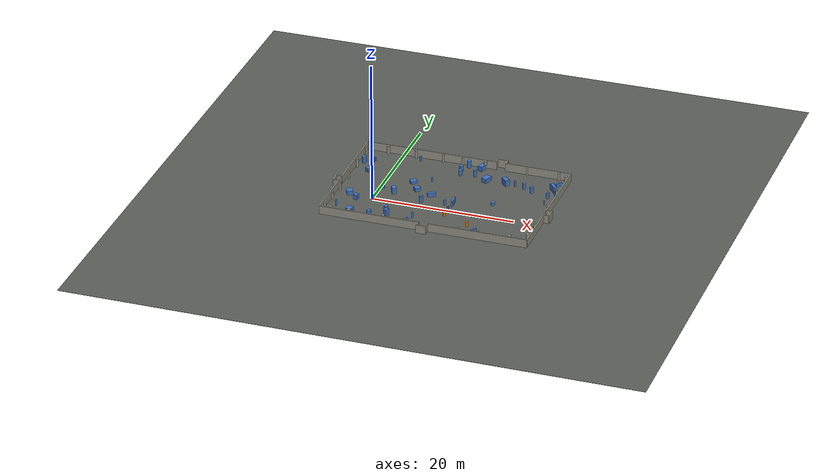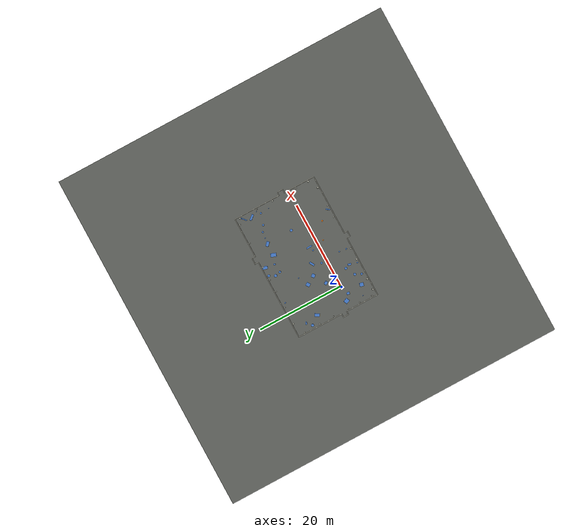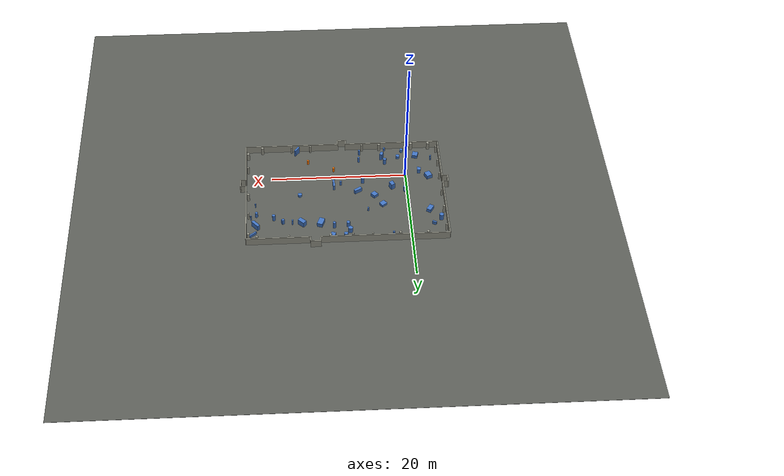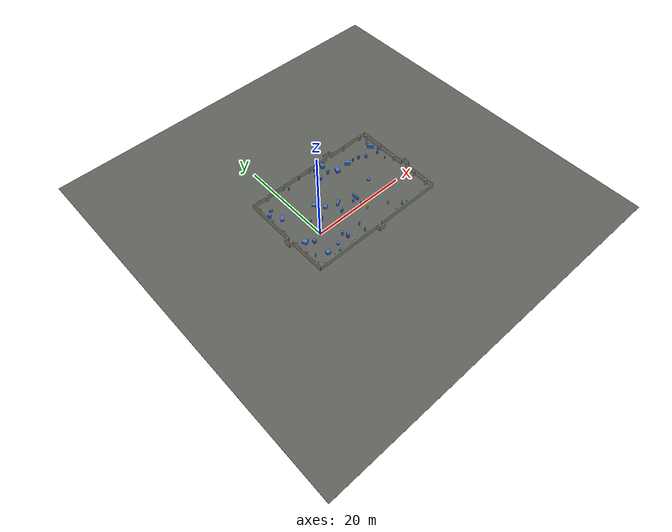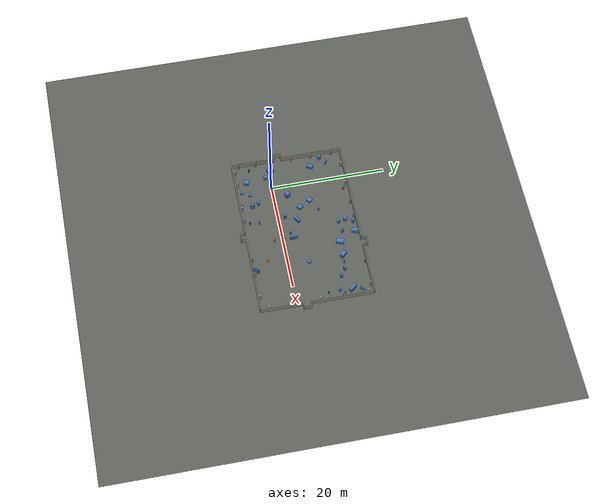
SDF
<sdf version="1.9">
 <world name="default">
  <model name="track_feature">
   <static>true</static>
   <link name="feature_link">
    <collision name="feat_box_3_collision">
     <pose>3.730426 6.058745 0.191413 0.000000 0.000000 -2.520980</pose>
     <geometry><box><size>0.887231 0.761544 0.382827</size></box></geometry>
    </collision>
    <visual name="feat_box_3_visual">
     <pose>3.730426 6.058745 0.191413 0.000000 0.000000 -2.520980</pose>
     <geometry><box><size>0.887231 0.761544 0.382827</size></box></geometry>
     <material><ambient>0.25 0.45 0.75 1</ambient><diffuse>0.25 0.45 0.75 1</diffuse></material>
    </visual>
    <collision name="feat_box_6_collision">
     <pose>-3.415404 0.365912 0.310558 0.000000 0.000000 -1.155151</pose>
     <geometry><box><size>0.975236 0.867513 0.621116</size></box></geometry>
    </collision>
    <visual name="feat_box_6_visual">
     <pose>-3.415404 0.365912 0.310558 0.000000 0.000000 -1.155151</pose>
     <geometry><box><size>0.975236 0.867513 0.621116</size></box></geometry>
     <material><ambient>0.25 0.45 0.75 1</ambient><diffuse>0.25 0.45 0.75 1</diffuse></material>
    </visual>
    <collision name="feat_box_8_collision">
     <pose>16.115030 -5.550907 0.544657 0.000000 0.000000 0.929510</pose>
     <geometry><box><size>1.044340 0.217578 1.089314</size></box></geometry>
    </collision>
    <visual name="feat_box_8_visual">
     <pose>16.115030 -5.550907 0.544657 0.000000 0.000000 0.929510</pose>
     <geometry><box><size>1.044340 0.217578 1.089314</size></box></geometry>
     <material><ambient>0.25 0.45 0.75 1</ambient><diffuse>0.25 0.45 0.75 1</diffuse></material>
    </visual>
    <collision name="feat_box_9_collision">
     <pose>10.815213 1.953281 0.410378 0.000000 0.000000 -1.531074</pose>
     <geometry><box><size>1.318826 0.285740 0.820756</size></box></geometry>
    </collision>
    <visual name="feat_box_9_visual">
     <pose>10.815213 1.953281 0.410378 0.000000 0.000000 -1.531074</pose>
     <geometry><box><size>1.318826 0.285740 0.820756</size></box></geometry>
     <material><ambient>0.25 0.45 0.75 1</ambient><diffuse>0.25 0.45 0.75 1</diffuse></material>
    </visual>
    <collision name="feat_box_11_collision">
     <pose>22.926767 11.597689 0.215051 0.000000 0.000000 -2.441700</pose>
     <geometry><box><size>1.338069 0.207549 0.430103</size></box></geometry>
    </collision>
    <visual name="feat_box_11_visual">
     <pose>22.926767 11.597689 0.215051 0.000000 0.000000 -2.441700</pose>
     <geometry><box><size>1.338069 0.207549 0.430103</size></box></geometry>
     <material><ambient>0.25 0.45 0.75 1</ambient><diffuse>0.25 0.45 0.75 1</diffuse></material>
    </visual>
    <collision name="feat_box_13_collision">
     <pose>18.509252 9.308301 0.395112 0.000000 0.000000 0.445934</pose>
     <geometry><box><size>0.389248 0.353503 0.790225</size></box></geometry>
    </collision>
    <visual name="feat_box_13_visual">
     <pose>18.509252 9.308301 0.395112 0.000000 0.000000 0.445934</pose>
     <geometry><box><size>0.389248 0.353503 0.790225</size></box></geometry>
     <material><ambient>0.25 0.45 0.75 1</ambient><diffuse>0.25 0.45 0.75 1</diffuse></material>
    </visual>
    <collision name="feat_box_15_collision">
     <pose>4.902072 4.159753 0.253299 0.000000 0.000000 -0.870662</pose>
     <geometry><box><size>0.793347 0.770475 0.506598</size></box></geometry>
    </collision>
    <visual name="feat_box_15_visual">
     <pose>4.902072 4.159753 0.253299 0.000000 0.000000 -0.870662</pose>
     <geometry><box><size>0.793347 0.770475 0.506598</size></box></geometry>
     <material><ambient>0.25 0.45 0.75 1</ambient><diffuse>0.25 0.45 0.75 1</diffuse></material>
    </visual>
    <collision name="feat_box_20_collision">
     <pose>-2.096711 -0.724525 0.358845 0.000000 0.000000 3.006564</pose>
     <geometry><box><size>0.513341 0.641203 0.717691</size></box></geometry>
    </collision>
    <visual name="feat_box_20_visual">
     <pose>-2.096711 -0.724525 0.358845 0.000000 0.000000 3.006564</pose>
     <geometry><box><size>0.513341 0.641203 0.717691</size></box></geometry>
     <material><ambient>0.25 0.45 0.75 1</ambient><diffuse>0.25 0.45 0.75 1</diffuse></material>
    </visual>
    <collision name="feat_box_22_collision">
     <pose>2.182198 2.469468 0.470216 0.000000 0.000000 0.487606</pose>
     <geometry><box><size>0.615199 0.767488 0.940432</size></box></geometry>
    </collision>
    <visual name="feat_box_22_visual">
     <pose>2.182198 2.469468 0.470216 0.000000 0.000000 0.487606</pose>
     <geometry><box><size>0.615199 0.767488 0.940432</size></box></geometry>
     <material><ambient>0.25 0.45 0.75 1</ambient><diffuse>0.25 0.45 0.75 1</diffuse></material>
    </visual>
    <collision name="feat_box_24_collision">
     <pose>11.415800 12.579143 0.362358 0.000000 0.000000 1.239207</pose>
     <geometry><box><size>1.082434 0.672076 0.724716</size></box></geometry>
    </collision>
    <visual name="feat_box_24_visual">
     <pose>11.415800 12.579143 0.362358 0.000000 0.000000 1.239207</pose>
     <geometry><box><size>1.082434 0.672076 0.724716</size></box></geometry>
     <material><ambient>0.25 0.45 0.75 1</ambient><diffuse>0.25 0.45 0.75 1</diffuse></material>
    </visual>
    <collision name="feat_box_25_collision">
     <pose>13.019192 9.650428 0.325902 0.000000 0.000000 -1.930415</pose>
     <geometry><box><size>1.259161 0.801006 0.651804</size></box></geometry>
    </collision>
    <visual name="feat_box_25_visual">
     <pose>13.019192 9.650428 0.325902 0.000000 0.000000 -1.930415</pose>
     <geometry><box><size>1.259161 0.801006 0.651804</size></box></geometry>
     <material><ambient>0.25 0.45 0.75 1</ambient><diffuse>0.25 0.45 0.75 1</diffuse></material>
    </visual>
    <collision name="feat_box_28_collision">
     <pose>-3.072524 7.477056 0.277819 0.000000 0.000000 1.008469</pose>
     <geometry><box><size>1.099210 0.669735 0.555639</size></box></geometry>
    </collision>
    <visual name="feat_box_28_visual">
     <pose>-3.072524 7.477056 0.277819 0.000000 0.000000 1.008469</pose>
     <geometry><box><size>1.099210 0.669735 0.555639</size></box></geometry>
     <material><ambient>0.25 0.45 0.75 1</ambient><diffuse>0.25 0.45 0.75 1</diffuse></material>
    </visual>
    <collision name="feat_box_30_collision">
     <pose>7.314954 3.180194 0.312349 0.000000 0.000000 -2.598660</pose>
     <geometry><box><size>1.189577 0.423335 0.624698</size></box></geometry>
    </collision>
    <visual name="feat_box_30_visual">
     <pose>7.314954 3.180194 0.312349 0.000000 0.000000 -2.598660</pose>
     <geometry><box><size>1.189577 0.423335 0.624698</size></box></geometry>
     <material><ambient>0.25 0.45 0.75 1</ambient><diffuse>0.25 0.45 0.75 1</diffuse></material>
    </visual>
    <collision name="feat_box_34_collision">
     <pose>3.326744 -3.963082 0.534567 0.000000 0.000000 1.192291</pose>
     <geometry><box><size>0.684785 0.420083 1.069133</size></box></geometry>
    </collision>
    <visual name="feat_box_34_visual">
     <pose>3.326744 -3.963082 0.534567 0.000000 0.000000 1.192291</pose>
     <geometry><box><size>0.684785 0.420083 1.069133</size></box></geometry>
     <material><ambient>0.25 0.45 0.75 1</ambient><diffuse>0.25 0.45 0.75 1</diffuse></material>
    </visual>
    <collision name="feat_box_36_collision">
     <pose>-1.814496 -4.209445 0.277696 0.000000 0.000000 -1.838344</pose>
     <geometry><box><size>0.879017 0.807953 0.555392</size></box></geometry>
    </collision>
    <visual name="feat_box_36_visual">
     <pose>-1.814496 -4.209445 0.277696 0.000000 0.000000 -1.838344</pose>
     <geometry><box><size>0.879017 0.807953 0.555392</size></box></geometry>
     <material><ambient>0.25 0.45 0.75 1</ambient><diffuse>0.25 0.45 0.75 1</diffuse></material>
    </visual>
    <collision name="feat_box_37_collision">
     <pose>15.753716 9.629445 0.439591 0.000000 0.000000 2.358096</pose>
     <geometry><box><size>1.108895 0.632265 0.879181</size></box></geometry>
    </collision>
    <visual name="feat_box_37_visual">
     <pose>15.753716 9.629445 0.439591 0.000000 0.000000 2.358096</pose>
     <geometry><box><size>1.108895 0.632265 0.879181</size></box></geometry>
     <material><ambient>0.25 0.45 0.75 1</ambient><diffuse>0.25 0.45 0.75 1</diffuse></material>
    </visual>
    <collision name="feat_box_39_collision">
     <pose>22.476227 9.916242 0.434328 0.000000 0.000000 2.262926</pose>
     <geometry><box><size>1.376583 0.438230 0.868655</size></box></geometry>
    </collision>
    <visual name="feat_box_39_visual">
     <pose>22.476227 9.916242 0.434328 0.000000 0.000000 2.262926</pose>
     <geometry><box><size>1.376583 0.438230 0.868655</size></box></geometry>
     <material><ambient>0.25 0.45 0.75 1</ambient><diffuse>0.25 0.45 0.75 1</diffuse></material>
    </visual>
    <collision name="feat_box_41_collision">
     <pose>-3.447451 10.404382 0.255332 0.000000 0.000000 -2.001445</pose>
     <geometry><box><size>0.250688 0.607752 0.510664</size></box></geometry>
    </collision>
    <visual name="feat_box_41_visual">
     <pose>-3.447451 10.404382 0.255332 0.000000 0.000000 -2.001445</pose>
     <geometry><box><size>0.250688 0.607752 0.510664</size></box></geometry>
     <material><ambient>0.25 0.45 0.75 1</ambient><diffuse>0.25 0.45 0.75 1</diffuse></material>
    </visual>
    <collision name="feat_cyl_1_collision">
     <pose>6.823430 -3.371344 0.429166 0.000000 0.000000 0.000000</pose>
     <geometry><cylinder><radius>0.144311</radius><length>0.858331</length></cylinder></geometry>
    </collision>
    <visual name="feat_cyl_1_visual">
     <pose>6.823430 -3.371344 0.429166 0.000000 0.000000 0.000000</pose>
     <geometry><cylinder><radius>0.144311</radius><length>0.858331</length></cylinder></geometry>
     <material><ambient>0.25 0.45 0.75 1</ambient><diffuse>0.25 0.45 0.75 1</diffuse></material>
    </visual>
    <collision name="feat_cyl_2_collision">
     <pose>-4.543023 9.419059 0.480460 0.000000 0.000000 0.000000</pose>
     <geometry><cylinder><radius>0.312111</radius><length>0.960920</length></cylinder></geometry>
    </collision>
    <visual name="feat_cyl_2_visual">
     <pose>-4.543023 9.419059 0.480460 0.000000 0.000000 0.000000</pose>
     <geometry><cylinder><radius>0.312111</radius><length>0.960920</length></cylinder></geometry>
     <material><ambient>0.25 0.45 0.75 1</ambient><diffuse>0.25 0.45 0.75 1</diffuse></material>
    </visual>
    <collision name="feat_cyl_4_collision">
     <pose>10.641458 0.350668 0.256841 0.000000 0.000000 0.000000</pose>
     <geometry><cylinder><radius>0.111815</radius><length>0.513683</length></cylinder></geometry>
    </collision>
    <visual name="feat_cyl_4_visual">
     <pose>10.641458 0.350668 0.256841 0.000000 0.000000 0.000000</pose>
     <geometry><cylinder><radius>0.111815</radius><length>0.513683</length></cylinder></geometry>
     <material><ambient>0.25 0.45 0.75 1</ambient><diffuse>0.25 0.45 0.75 1</diffuse></material>
    </visual>
    <collision name="feat_cyl_5_collision">
     <pose>6.479678 1.219268 0.484534 0.000000 0.000000 0.000000</pose>
     <geometry><cylinder><radius>0.237790</radius><length>0.969069</length></cylinder></geometry>
    </collision>
    <visual name="feat_cyl_5_visual">
     <pose>6.479678 1.219268 0.484534 0.000000 0.000000 0.000000</pose>
     <geometry><cylinder><radius>0.237790</radius><length>0.969069</length></cylinder></geometry>
     <material><ambient>0.25 0.45 0.75 1</ambient><diffuse>0.25 0.45 0.75 1</diffuse></material>
    </visual>
    <collision name="feat_cyl_7_collision">
     <pose>0.861585 -3.973469 0.242152 0.000000 0.000000 0.000000</pose>
     <geometry><cylinder><radius>0.289131</radius><length>0.484304</length></cylinder></geometry>
    </collision>
    <visual name="feat_cyl_7_visual">
     <pose>0.861585 -3.973469 0.242152 0.000000 0.000000 0.000000</pose>
     <geometry><cylinder><radius>0.289131</radius><length>0.484304</length></cylinder></geometry>
     <material><ambient>0.25 0.45 0.75 1</ambient><diffuse>0.25 0.45 0.75 1</diffuse></material>
    </visual>
    <collision name="feat_cyl_10_collision">
     <pose>22.343738 7.720364 0.411125 0.000000 0.000000 0.000000</pose>
     <geometry><cylinder><radius>0.204487</radius><length>0.822250</length></cylinder></geometry>
    </collision>
    <visual name="feat_cyl_10_visual">
     <pose>22.343738 7.720364 0.411125 0.000000 0.000000 0.000000</pose>
     <geometry><cylinder><radius>0.204487</radius><length>0.822250</length></cylinder></geometry>
     <material><ambient>0.25 0.45 0.75 1</ambient><diffuse>0.25 0.45 0.75 1</diffuse></material>
    </visual>
    <collision name="feat_cyl_12_collision">
     <pose>6.650186 -4.968301 0.432508 0.000000 0.000000 0.000000</pose>
     <geometry><cylinder><radius>0.150543</radius><length>0.865017</length></cylinder></geometry>
    </collision>
    <visual name="feat_cyl_12_visual">
     <pose>6.650186 -4.968301 0.432508 0.000000 0.000000 0.000000</pose>
     <geometry><cylinder><radius>0.150543</radius><length>0.865017</length></cylinder></geometry>
     <material><ambient>0.25 0.45 0.75 1</ambient><diffuse>0.25 0.45 0.75 1</diffuse></material>
    </visual>
    <collision name="feat_cyl_14_collision">
     <pose>23.142132 8.390867 0.418767 0.000000 0.000000 0.000000</pose>
     <geometry><cylinder><radius>0.097013</radius><length>0.837533</length></cylinder></geometry>
    </collision>
    <visual name="feat_cyl_14_visual">
     <pose>23.142132 8.390867 0.418767 0.000000 0.000000 0.000000</pose>
     <geometry><cylinder><radius>0.097013</radius><length>0.837533</length></cylinder></geometry>
     <material><ambient>0.25 0.45 0.75 1</ambient><diffuse>0.25 0.45 0.75 1</diffuse></material>
    </visual>
    <collision name="feat_cyl_16_collision">
     <pose>2.917547 -2.856771 0.456504 0.000000 0.000000 0.000000</pose>
     <geometry><cylinder><radius>0.262776</radius><length>0.913007</length></cylinder></geometry>
    </collision>
    <visual name="feat_cyl_16_visual">
     <pose>2.917547 -2.856771 0.456504 0.000000 0.000000 0.000000</pose>
     <geometry><cylinder><radius>0.262776</radius><length>0.913007</length></cylinder></geometry>
     <material><ambient>0.25 0.45 0.75 1</ambient><diffuse>0.25 0.45 0.75 1</diffuse></material>
    </visual>
    <collision name="feat_cyl_17_collision">
     <pose>15.911658 3.669256 0.188206 0.000000 0.000000 0.000000</pose>
     <geometry><cylinder><radius>0.306466</radius><length>0.376413</length></cylinder></geometry>
    </collision>
    <visual name="feat_cyl_17_visual">
     <pose>15.911658 3.669256 0.188206 0.000000 0.000000 0.000000</pose>
     <geometry><cylinder><radius>0.306466</radius><length>0.376413</length></cylinder></geometry>
     <material><ambient>0.25 0.45 0.75 1</ambient><diffuse>0.25 0.45 0.75 1</diffuse></material>
    </visual>
    <collision name="feat_cyl_18_collision">
     <pose>22.476498 5.720379 0.325613 0.000000 0.000000 0.000000</pose>
     <geometry><cylinder><radius>0.098485</radius><length>0.651226</length></cylinder></geometry>
    </collision>
    <visual name="feat_cyl_18_visual">
     <pose>22.476498 5.720379 0.325613 0.000000 0.000000 0.000000</pose>
     <geometry><cylinder><radius>0.098485</radius><length>0.651226</length></cylinder></geometry>
     <material><ambient>0.25 0.45 0.75 1</ambient><diffuse>0.25 0.45 0.75 1</diffuse></material>
    </visual>
    <collision name="feat_cyl_19_collision">
     <pose>2.599666 12.349716 0.358015 0.000000 0.000000 0.000000</pose>
     <geometry><cylinder><radius>0.135179</radius><length>0.716030</length></cylinder></geometry>
    </collision>
    <visual name="feat_cyl_19_visual">
     <pose>2.599666 12.349716 0.358015 0.000000 0.000000 0.000000</pose>
     <geometry><cylinder><radius>0.135179</radius><length>0.716030</length></cylinder></geometry>
     <material><ambient>0.25 0.45 0.75 1</ambient><diffuse>0.25 0.45 0.75 1</diffuse></material>
    </visual>
    <collision name="feat_cyl_21_collision">
     <pose>9.509352 12.678236 0.530789 0.000000 0.000000 0.000000</pose>
     <geometry><cylinder><radius>0.281107</radius><length>1.061578</length></cylinder></geometry>
    </collision>
    <visual name="feat_cyl_21_visual">
     <pose>9.509352 12.678236 0.530789 0.000000 0.000000 0.000000</pose>
     <geometry><cylinder><radius>0.281107</radius><length>1.061578</length></cylinder></geometry>
     <material><ambient>0.25 0.45 0.75 1</ambient><diffuse>0.25 0.45 0.75 1</diffuse></material>
    </visual>
    <collision name="feat_cyl_23_collision">
     <pose>9.770001 1.560531 0.361451 0.000000 0.000000 0.000000</pose>
     <geometry><cylinder><radius>0.167578</radius><length>0.722902</length></cylinder></geometry>
    </collision>
    <visual name="feat_cyl_23_visual">
     <pose>9.770001 1.560531 0.361451 0.000000 0.000000 0.000000</pose>
     <geometry><cylinder><radius>0.167578</radius><length>0.722902</length></cylinder></geometry>
     <material><ambient>0.25 0.45 0.75 1</ambient><diffuse>0.25 0.45 0.75 1</diffuse></material>
    </visual>
    <collision name="feat_cyl_26_collision">
     <pose>8.814293 11.367897 0.418019 0.000000 0.000000 0.000000</pose>
     <geometry><cylinder><radius>0.318881</radius><length>0.836038</length></cylinder></geometry>
    </collision>
    <visual name="feat_cyl_26_visual">
     <pose>8.814293 11.367897 0.418019 0.000000 0.000000 0.000000</pose>
     <geometry><cylinder><radius>0.318881</radius><length>0.836038</length></cylinder></geometry>
     <material><ambient>0.25 0.45 0.75 1</ambient><diffuse>0.25 0.45 0.75 1</diffuse></material>
    </visual>
    <collision name="feat_cyl_27_collision">
     <pose>17.130093 9.508165 0.418193 0.000000 0.000000 0.000000</pose>
     <geometry><cylinder><radius>0.127883</radius><length>0.836386</length></cylinder></geometry>
    </collision>
    <visual name="feat_cyl_27_visual">
     <pose>17.130093 9.508165 0.418193 0.000000 0.000000 0.000000</pose>
     <geometry><cylinder><radius>0.127883</radius><length>0.836386</length></cylinder></geometry>
     <material><ambient>0.25 0.45 0.75 1</ambient><diffuse>0.25 0.45 0.75 1</diffuse></material>
    </visual>
    <collision name="feat_cyl_29_collision">
     <pose>0.200716 -5.356258 0.229293 0.000000 0.000000 0.000000</pose>
     <geometry><cylinder><radius>0.235377</radius><length>0.458585</length></cylinder></geometry>
    </collision>
    <visual name="feat_cyl_29_visual">
     <pose>0.200716 -5.356258 0.229293 0.000000 0.000000 0.000000</pose>
     <geometry><cylinder><radius>0.235377</radius><length>0.458585</length></cylinder></geometry>
     <material><ambient>0.25 0.45 0.75 1</ambient><diffuse>0.25 0.45 0.75 1</diffuse></material>
    </visual>
    <collision name="feat_cyl_31_collision">
     <pose>9.079466 10.171304 0.400524 0.000000 0.000000 0.000000</pose>
     <geometry><cylinder><radius>0.258450</radius><length>0.801048</length></cylinder></geometry>
    </collision>
    <visual name="feat_cyl_31_visual">
     <pose>9.079466 10.171304 0.400524 0.000000 0.000000 0.000000</pose>
     <geometry><cylinder><radius>0.258450</radius><length>0.801048</length></cylinder></geometry>
     <material><ambient>0.25 0.45 0.75 1</ambient><diffuse>0.25 0.45 0.75 1</diffuse></material>
    </visual>
    <collision name="feat_cyl_32_collision">
     <pose>19.836274 8.477344 0.451798 0.000000 0.000000 0.000000</pose>
     <geometry><cylinder><radius>0.231257</radius><length>0.903596</length></cylinder></geometry>
    </collision>
    <visual name="feat_cyl_32_visual">
     <pose>19.836274 8.477344 0.451798 0.000000 0.000000 0.000000</pose>
     <geometry><cylinder><radius>0.231257</radius><length>0.903596</length></cylinder></geometry>
     <material><ambient>0.25 0.45 0.75 1</ambient><diffuse>0.25 0.45 0.75 1</diffuse></material>
    </visual>
    <collision name="feat_cyl_33_collision">
     <pose>6.006801 7.211249 0.306891 0.000000 0.000000 0.000000</pose>
     <geometry><cylinder><radius>0.123452</radius><length>0.613782</length></cylinder></geometry>
    </collision>
    <visual name="feat_cyl_33_visual">
     <pose>6.006801 7.211249 0.306891 0.000000 0.000000 0.000000</pose>
     <geometry><cylinder><radius>0.123452</radius><length>0.613782</length></cylinder></geometry>
     <material><ambient>0.25 0.45 0.75 1</ambient><diffuse>0.25 0.45 0.75 1</diffuse></material>
    </visual>
    <collision name="feat_cyl_35_collision">
     <pose>-4.056913 -3.318548 0.437616 0.000000 0.000000 0.000000</pose>
     <geometry><cylinder><radius>0.105128</radius><length>0.875231</length></cylinder></geometry>
    </collision>
    <visual name="feat_cyl_35_visual">
     <pose>-4.056913 -3.318548 0.437616 0.000000 0.000000 0.000000</pose>
     <geometry><cylinder><radius>0.105128</radius><length>0.875231</length></cylinder></geometry>
     <material><ambient>0.25 0.45 0.75 1</ambient><diffuse>0.25 0.45 0.75 1</diffuse></material>
    </visual>
    <collision name="feat_cyl_38_collision">
     <pose>0.286478 3.261611 0.421737 0.000000 0.000000 0.000000</pose>
     <geometry><cylinder><radius>0.258904</radius><length>0.843473</length></cylinder></geometry>
    </collision>
    <visual name="feat_cyl_38_visual">
     <pose>0.286478 3.261611 0.421737 0.000000 0.000000 0.000000</pose>
     <geometry><cylinder><radius>0.258904</radius><length>0.843473</length></cylinder></geometry>
     <material><ambient>0.25 0.45 0.75 1</ambient><diffuse>0.25 0.45 0.75 1</diffuse></material>
    </visual>
    <collision name="feat_cyl_40_collision">
     <pose>2.818507 -5.673829 0.286138 0.000000 0.000000 0.000000</pose>
     <geometry><cylinder><radius>0.145942</radius><length>0.572276</length></cylinder></geometry>
    </collision>
    <visual name="feat_cyl_40_visual">
     <pose>2.818507 -5.673829 0.286138 0.000000 0.000000 0.000000</pose>
     <geometry><cylinder><radius>0.145942</radius><length>0.572276</length></cylinder></geometry>
     <material><ambient>0.25 0.45 0.75 1</ambient><diffuse>0.25 0.45 0.75 1</diffuse></material>
    </visual>
    <collision name="feat_cyl_42_collision">
     <pose>11.109261 10.404739 0.501373 0.000000 0.000000 0.000000</pose>
     <geometry><cylinder><radius>0.216308</radius><length>1.002745</length></cylinder></geometry>
    </collision>
    <visual name="feat_cyl_42_visual">
     <pose>11.109261 10.404739 0.501373 0.000000 0.000000 0.000000</pose>
     <geometry><cylinder><radius>0.216308</radius><length>1.002745</length></cylinder></geometry>
     <material><ambient>0.25 0.45 0.75 1</ambient><diffuse>0.25 0.45 0.75 1</diffuse></material>
    </visual>
   </link>
  </model>
  <model name="track_ground">
   <static>true</static>
   <link name="ground_link">
    <collision name="ground_collision">
     <pose>9.416386 3.318913 -0.025000 0.000000 0.000000 0.000000</pose>
     <geometry><box><size>80.000000 80.000000 0.050000</size></box></geometry>
     <surface>
      <friction><ode><mu>1.2</mu><mu2>1.2</mu2></ode></friction>
      <contact><ode><kp>100000.0</kp><kd>10.0</kd></ode></contact>
     </surface>
    </collision>
    <visual name="ground_visual">
     <pose>9.416386 3.318913 -0.025000 0.000000 0.000000 0.000000</pose>
     <geometry><box><size>80.000000 80.000000 0.050000</size></box></geometry>
     <material><ambient>0.35 0.36 0.34 1</ambient><diffuse>0.35 0.36 0.34 1</diffuse></material>
    </visual>
   </link>
  </model>
  <model name="track_obstacle">
   <static>true</static>
   <link name="obstacle_link">
    <collision name="obst_0_collision">
     <pose>10.713619 -1.449219 0.350000 0.000000 0.000000 0.000000</pose>
     <geometry><cylinder><radius>0.160000</radius><length>0.700000</length></cylinder></geometry>
    </collision>
    <visual name="obst_0_visual">
     <pose>10.713619 -1.449219 0.350000 0.000000 0.000000 0.000000</pose>
     <geometry><cylinder><radius>0.160000</radius><length>0.700000</length></cylinder></geometry>
     <material><ambient>1.0 0.45 0.0 1</ambient><diffuse>1.0 0.45 0.0 1</diffuse></material>
    </visual>
    <collision name="obst_1_collision">
     <pose>14.498621 -3.255044 0.350000 0.000000 0.000000 0.000000</pose>
     <geometry><cylinder><radius>0.160000</radius><length>0.700000</length></cylinder></geometry>
    </collision>
    <visual name="obst_1_visual">
     <pose>14.498621 -3.255044 0.350000 0.000000 0.000000 0.000000</pose>
     <geometry><cylinder><radius>0.160000</radius><length>0.700000</length></cylinder></geometry>
     <material><ambient>1.0 0.45 0.0 1</ambient><diffuse>1.0 0.45 0.0 1</diffuse></material>
    </visual>
   </link>
  </model>
  <model name="track_room">
   <static>true</static>
   <link name="room_link">
    <collision name="hall_0_0_collision">
     <pose>1.686435 -6.223313 0.600000 0.000000 0.000000 0.000000</pose>
     <geometry><box><size>14.137747 0.150000 1.200000</size></box></geometry>
    </collision>
    <visual name="hall_0_0_visual">
     <pose>1.686435 -6.223313 0.600000 0.000000 0.000000 0.000000</pose>
     <geometry><box><size>14.137747 0.150000 1.200000</size></box></geometry>
     <material><ambient>0.6 0.6 0.55 1</ambient><diffuse>0.6 0.6 0.55 1</diffuse></material>
    </visual>
    <collision name="hall_0_152_collision">
     <pose>16.856474 -6.223313 0.600000 0.000000 0.000000 0.000000</pose>
     <geometry><box><size>14.027018 0.150000 1.200000</size></box></geometry>
    </collision>
    <visual name="hall_0_152_visual">
     <pose>16.856474 -6.223313 0.600000 0.000000 0.000000 0.000000</pose>
     <geometry><box><size>14.027018 0.150000 1.200000</size></box></geometry>
     <material><ambient>0.6 0.6 0.55 1</ambient><diffuse>0.6 0.6 0.55 1</diffuse></material>
    </visual>
    <collision name="hall_niche_0_collision">
     <pose>9.299137 -7.023313 0.600000 0.000000 0.000000 0.000000</pose>
     <geometry><box><size>1.387657 0.150000 1.200000</size></box></geometry>
    </collision>
    <visual name="hall_niche_0_visual">
     <pose>9.299137 -7.023313 0.600000 0.000000 0.000000 0.000000</pose>
     <geometry><box><size>1.387657 0.150000 1.200000</size></box></geometry>
     <material><ambient>0.6 0.6 0.55 1</ambient><diffuse>0.6 0.6 0.55 1</diffuse></material>
    </visual>
    <collision name="hall_jamb_0_-1_collision">
     <pose>8.680309 -6.623313 0.600000 0.000000 0.000000 0.000000</pose>
     <geometry><box><size>0.150000 0.800000 1.200000</size></box></geometry>
    </collision>
    <visual name="hall_jamb_0_-1_visual">
     <pose>8.680309 -6.623313 0.600000 0.000000 0.000000 0.000000</pose>
     <geometry><box><size>0.150000 0.800000 1.200000</size></box></geometry>
     <material><ambient>0.6 0.6 0.55 1</ambient><diffuse>0.6 0.6 0.55 1</diffuse></material>
    </visual>
    <collision name="hall_jamb_0_1_collision">
     <pose>9.917965 -6.623313 0.600000 0.000000 0.000000 0.000000</pose>
     <geometry><box><size>0.150000 0.800000 1.200000</size></box></geometry>
    </collision>
    <visual name="hall_jamb_0_1_visual">
     <pose>9.917965 -6.623313 0.600000 0.000000 0.000000 0.000000</pose>
     <geometry><box><size>0.150000 0.800000 1.200000</size></box></geometry>
     <material><ambient>0.6 0.6 0.55 1</ambient><diffuse>0.6 0.6 0.55 1</diffuse></material>
    </visual>
    <collision name="hall_1_0_collision">
     <pose>23.869983 -2.536081 0.600000 0.000000 0.000000 1.570796</pose>
     <geometry><box><size>7.374465 0.150000 1.200000</size></box></geometry>
    </collision>
    <visual name="hall_1_0_visual">
     <pose>23.869983 -2.536081 0.600000 0.000000 0.000000 1.570796</pose>
     <geometry><box><size>7.374465 0.150000 1.200000</size></box></geometry>
     <material><ambient>0.6 0.6 0.55 1</ambient><diffuse>0.6 0.6 0.55 1</diffuse></material>
    </visual>
    <collision name="hall_1_85_collision">
     <pose>23.869983 7.805228 0.600000 0.000000 0.000000 1.570796</pose>
     <geometry><box><size>10.999810 0.150000 1.200000</size></box></geometry>
    </collision>
    <visual name="hall_1_85_visual">
     <pose>23.869983 7.805228 0.600000 0.000000 0.000000 1.570796</pose>
     <geometry><box><size>10.999810 0.150000 1.200000</size></box></geometry>
     <material><ambient>0.6 0.6 0.55 1</ambient><diffuse>0.6 0.6 0.55 1</diffuse></material>
    </visual>
    <collision name="hall_niche_1_collision">
     <pose>24.669983 1.728237 0.600000 0.000000 0.000000 1.570796</pose>
     <geometry><box><size>1.454172 0.150000 1.200000</size></box></geometry>
    </collision>
    <visual name="hall_niche_1_visual">
     <pose>24.669983 1.728237 0.600000 0.000000 0.000000 1.570796</pose>
     <geometry><box><size>1.454172 0.150000 1.200000</size></box></geometry>
     <material><ambient>0.6 0.6 0.55 1</ambient><diffuse>0.6 0.6 0.55 1</diffuse></material>
    </visual>
    <collision name="hall_jamb_1_-1_collision">
     <pose>24.269983 1.076151 0.600000 0.000000 0.000000 1.570796</pose>
     <geometry><box><size>0.150000 0.800000 1.200000</size></box></geometry>
    </collision>
    <visual name="hall_jamb_1_-1_visual">
     <pose>24.269983 1.076151 0.600000 0.000000 0.000000 1.570796</pose>
     <geometry><box><size>0.150000 0.800000 1.200000</size></box></geometry>
     <material><ambient>0.6 0.6 0.55 1</ambient><diffuse>0.6 0.6 0.55 1</diffuse></material>
    </visual>
    <collision name="hall_jamb_1_1_collision">
     <pose>24.269983 2.380323 0.600000 0.000000 0.000000 1.570796</pose>
     <geometry><box><size>0.150000 0.800000 1.200000</size></box></geometry>
    </collision>
    <visual name="hall_jamb_1_1_visual">
     <pose>24.269983 2.380323 0.600000 0.000000 0.000000 1.570796</pose>
     <geometry><box><size>0.150000 0.800000 1.200000</size></box></geometry>
     <material><ambient>0.6 0.6 0.55 1</ambient><diffuse>0.6 0.6 0.55 1</diffuse></material>
    </visual>
    <collision name="hall_2_0_collision">
     <pose>19.199880 13.305133 0.600000 0.000000 0.000000 3.141593</pose>
     <geometry><box><size>9.340206 0.150000 1.200000</size></box></geometry>
    </collision>
    <visual name="hall_2_0_visual">
     <pose>19.199880 13.305133 0.600000 0.000000 0.000000 3.141593</pose>
     <geometry><box><size>9.340206 0.150000 1.200000</size></box></geometry>
     <material><ambient>0.6 0.6 0.55 1</ambient><diffuse>0.6 0.6 0.55 1</diffuse></material>
    </visual>
    <collision name="hall_2_106_collision">
     <pose>3.936441 13.305133 0.600000 0.000000 0.000000 3.141593</pose>
     <geometry><box><size>18.637760 0.150000 1.200000</size></box></geometry>
    </collision>
    <visual name="hall_2_106_visual">
     <pose>3.936441 13.305133 0.600000 0.000000 0.000000 3.141593</pose>
     <geometry><box><size>18.637760 0.150000 1.200000</size></box></geometry>
     <material><ambient>0.6 0.6 0.55 1</ambient><diffuse>0.6 0.6 0.55 1</diffuse></material>
    </visual>
    <collision name="hall_niche_2_collision">
     <pose>13.892549 14.105133 0.600000 0.000000 0.000000 3.141593</pose>
     <geometry><box><size>1.574456 0.150000 1.200000</size></box></geometry>
    </collision>
    <visual name="hall_niche_2_visual">
     <pose>13.892549 14.105133 0.600000 0.000000 0.000000 3.141593</pose>
     <geometry><box><size>1.574456 0.150000 1.200000</size></box></geometry>
     <material><ambient>0.6 0.6 0.55 1</ambient><diffuse>0.6 0.6 0.55 1</diffuse></material>
    </visual>
    <collision name="hall_jamb_2_-1_collision">
     <pose>14.604777 13.705133 0.600000 0.000000 0.000000 3.141593</pose>
     <geometry><box><size>0.150000 0.800000 1.200000</size></box></geometry>
    </collision>
    <visual name="hall_jamb_2_-1_visual">
     <pose>14.604777 13.705133 0.600000 0.000000 0.000000 3.141593</pose>
     <geometry><box><size>0.150000 0.800000 1.200000</size></box></geometry>
     <material><ambient>0.6 0.6 0.55 1</ambient><diffuse>0.6 0.6 0.55 1</diffuse></material>
    </visual>
    <collision name="hall_jamb_2_1_collision">
     <pose>13.180321 13.705133 0.600000 0.000000 0.000000 3.141593</pose>
     <geometry><box><size>0.150000 0.800000 1.200000</size></box></geometry>
    </collision>
    <visual name="hall_jamb_2_1_visual">
     <pose>13.180321 13.705133 0.600000 0.000000 0.000000 3.141593</pose>
     <geometry><box><size>0.150000 0.800000 1.200000</size></box></geometry>
     <material><ambient>0.6 0.6 0.55 1</ambient><diffuse>0.6 0.6 0.55 1</diffuse></material>
    </visual>
    <collision name="hall_3_0_collision">
     <pose>-5.382439 7.950508 0.600000 0.000000 0.000000 -1.570796</pose>
     <geometry><box><size>10.709250 0.150000 1.200000</size></box></geometry>
    </collision>
    <visual name="hall_3_0_visual">
     <pose>-5.382439 7.950508 0.600000 0.000000 0.000000 -1.570796</pose>
     <geometry><box><size>10.709250 0.150000 1.200000</size></box></geometry>
     <material><ambient>0.6 0.6 0.55 1</ambient><diffuse>0.6 0.6 0.55 1</diffuse></material>
    </visual>
    <collision name="hall_3_117_collision">
     <pose>-5.382439 -2.352358 0.600000 0.000000 0.000000 -1.570796</pose>
     <geometry><box><size>7.741911 0.150000 1.200000</size></box></geometry>
    </collision>
    <visual name="hall_3_117_visual">
     <pose>-5.382439 -2.352358 0.600000 0.000000 0.000000 -1.570796</pose>
     <geometry><box><size>7.741911 0.150000 1.200000</size></box></geometry>
     <material><ambient>0.6 0.6 0.55 1</ambient><diffuse>0.6 0.6 0.55 1</diffuse></material>
    </visual>
    <collision name="hall_niche_3_collision">
     <pose>-6.182439 2.057240 0.600000 0.000000 0.000000 -1.570796</pose>
     <geometry><box><size>1.377286 0.150000 1.200000</size></box></geometry>
    </collision>
    <visual name="hall_niche_3_visual">
     <pose>-6.182439 2.057240 0.600000 0.000000 0.000000 -1.570796</pose>
     <geometry><box><size>1.377286 0.150000 1.200000</size></box></geometry>
     <material><ambient>0.6 0.6 0.55 1</ambient><diffuse>0.6 0.6 0.55 1</diffuse></material>
    </visual>
    <collision name="hall_jamb_3_-1_collision">
     <pose>-5.782439 2.670883 0.600000 0.000000 0.000000 -1.570796</pose>
     <geometry><box><size>0.150000 0.800000 1.200000</size></box></geometry>
    </collision>
    <visual name="hall_jamb_3_-1_visual">
     <pose>-5.782439 2.670883 0.600000 0.000000 0.000000 -1.570796</pose>
     <geometry><box><size>0.150000 0.800000 1.200000</size></box></geometry>
     <material><ambient>0.6 0.6 0.55 1</ambient><diffuse>0.6 0.6 0.55 1</diffuse></material>
    </visual>
    <collision name="hall_jamb_3_1_collision">
     <pose>-5.782439 1.443597 0.600000 0.000000 0.000000 -1.570796</pose>
     <geometry><box><size>0.150000 0.800000 1.200000</size></box></geometry>
    </collision>
    <visual name="hall_jamb_3_1_visual">
     <pose>-5.782439 1.443597 0.600000 0.000000 0.000000 -1.570796</pose>
     <geometry><box><size>0.150000 0.800000 1.200000</size></box></geometry>
     <material><ambient>0.6 0.6 0.55 1</ambient><diffuse>0.6 0.6 0.55 1</diffuse></material>
    </visual>
    <collision name="column_0_14_collision">
     <pose>-3.888591 -5.873313 0.600000 0.000000 0.000000 0.000000</pose>
     <geometry><cylinder><radius>0.216622</radius><length>1.200000</length></cylinder></geometry>
    </collision>
    <visual name="column_0_14_visual">
     <pose>-3.888591 -5.873313 0.600000 0.000000 0.000000 0.000000</pose>
     <geometry><cylinder><radius>0.216622</radius><length>1.200000</length></cylinder></geometry>
     <material><ambient>0.6 0.6 0.55 1</ambient><diffuse>0.6 0.6 0.55 1</diffuse></material>
    </visual>
    <collision name="column_0_41_collision">
     <pose>-1.275869 -5.873313 0.600000 0.000000 0.000000 0.000000</pose>
     <geometry><cylinder><radius>0.212876</radius><length>1.200000</length></cylinder></geometry>
    </collision>
    <visual name="column_0_41_visual">
     <pose>-1.275869 -5.873313 0.600000 0.000000 0.000000 0.000000</pose>
     <geometry><cylinder><radius>0.212876</radius><length>1.200000</length></cylinder></geometry>
     <material><ambient>0.6 0.6 0.55 1</ambient><diffuse>0.6 0.6 0.55 1</diffuse></material>
    </visual>
    <collision name="column_0_89_collision">
     <pose>3.593274 -5.873313 0.600000 0.000000 0.000000 0.000000</pose>
     <geometry><cylinder><radius>0.190142</radius><length>1.200000</length></cylinder></geometry>
    </collision>
    <visual name="column_0_89_visual">
     <pose>3.593274 -5.873313 0.600000 0.000000 0.000000 0.000000</pose>
     <geometry><cylinder><radius>0.190142</radius><length>1.200000</length></cylinder></geometry>
     <material><ambient>0.6 0.6 0.55 1</ambient><diffuse>0.6 0.6 0.55 1</diffuse></material>
    </visual>
    <collision name="column_0_116_collision">
     <pose>6.237463 -5.873313 0.600000 0.000000 0.000000 0.000000</pose>
     <geometry><cylinder><radius>0.160727</radius><length>1.200000</length></cylinder></geometry>
    </collision>
    <visual name="column_0_116_visual">
     <pose>6.237463 -5.873313 0.600000 0.000000 0.000000 0.000000</pose>
     <geometry><cylinder><radius>0.160727</radius><length>1.200000</length></cylinder></geometry>
     <material><ambient>0.6 0.6 0.55 1</ambient><diffuse>0.6 0.6 0.55 1</diffuse></material>
    </visual>
    <collision name="column_0_194_collision">
     <pose>14.080113 -5.873313 0.600000 0.000000 0.000000 0.000000</pose>
     <geometry><cylinder><radius>0.150025</radius><length>1.200000</length></cylinder></geometry>
    </collision>
    <visual name="column_0_194_visual">
     <pose>14.080113 -5.873313 0.600000 0.000000 0.000000 0.000000</pose>
     <geometry><cylinder><radius>0.150025</radius><length>1.200000</length></cylinder></geometry>
     <material><ambient>0.6 0.6 0.55 1</ambient><diffuse>0.6 0.6 0.55 1</diffuse></material>
    </visual>
    <collision name="column_0_223_collision">
     <pose>16.935328 -5.873313 0.600000 0.000000 0.000000 0.000000</pose>
     <geometry><cylinder><radius>0.138333</radius><length>1.200000</length></cylinder></geometry>
    </collision>
    <visual name="column_0_223_visual">
     <pose>16.935328 -5.873313 0.600000 0.000000 0.000000 0.000000</pose>
     <geometry><cylinder><radius>0.138333</radius><length>1.200000</length></cylinder></geometry>
     <material><ambient>0.6 0.6 0.55 1</ambient><diffuse>0.6 0.6 0.55 1</diffuse></material>
    </visual>
    <collision name="column_0_267_collision">
     <pose>21.357977 -5.873313 0.600000 0.000000 0.000000 0.000000</pose>
     <geometry><cylinder><radius>0.211605</radius><length>1.200000</length></cylinder></geometry>
    </collision>
    <visual name="column_0_267_visual">
     <pose>21.357977 -5.873313 0.600000 0.000000 0.000000 0.000000</pose>
     <geometry><cylinder><radius>0.211605</radius><length>1.200000</length></cylinder></geometry>
     <material><ambient>0.6 0.6 0.55 1</ambient><diffuse>0.6 0.6 0.55 1</diffuse></material>
    </visual>
    <collision name="column_1_15_collision">
     <pose>23.519983 -4.664358 0.600000 0.000000 0.000000 0.000000</pose>
     <geometry><cylinder><radius>0.213023</radius><length>1.200000</length></cylinder></geometry>
    </collision>
    <visual name="column_1_15_visual">
     <pose>23.519983 -4.664358 0.600000 0.000000 0.000000 0.000000</pose>
     <geometry><cylinder><radius>0.213023</radius><length>1.200000</length></cylinder></geometry>
     <material><ambient>0.6 0.6 0.55 1</ambient><diffuse>0.6 0.6 0.55 1</diffuse></material>
    </visual>
    <collision name="column_1_46_collision">
     <pose>23.519983 -1.600328 0.600000 0.000000 0.000000 0.000000</pose>
     <geometry><cylinder><radius>0.157245</radius><length>1.200000</length></cylinder></geometry>
    </collision>
    <visual name="column_1_46_visual">
     <pose>23.519983 -1.600328 0.600000 0.000000 0.000000 0.000000</pose>
     <geometry><cylinder><radius>0.157245</radius><length>1.200000</length></cylinder></geometry>
     <material><ambient>0.6 0.6 0.55 1</ambient><diffuse>0.6 0.6 0.55 1</diffuse></material>
    </visual>
    <collision name="column_1_104_collision">
     <pose>23.519983 4.191368 0.600000 0.000000 0.000000 0.000000</pose>
     <geometry><cylinder><radius>0.191642</radius><length>1.200000</length></cylinder></geometry>
    </collision>
    <visual name="column_1_104_visual">
     <pose>23.519983 4.191368 0.600000 0.000000 0.000000 0.000000</pose>
     <geometry><cylinder><radius>0.191642</radius><length>1.200000</length></cylinder></geometry>
     <material><ambient>0.6 0.6 0.55 1</ambient><diffuse>0.6 0.6 0.55 1</diffuse></material>
    </visual>
    <collision name="column_1_143_collision">
     <pose>23.519983 8.095480 0.600000 0.000000 0.000000 0.000000</pose>
     <geometry><cylinder><radius>0.132239</radius><length>1.200000</length></cylinder></geometry>
    </collision>
    <visual name="column_1_143_visual">
     <pose>23.519983 8.095480 0.600000 0.000000 0.000000 0.000000</pose>
     <geometry><cylinder><radius>0.132239</radius><length>1.200000</length></cylinder></geometry>
     <material><ambient>0.6 0.6 0.55 1</ambient><diffuse>0.6 0.6 0.55 1</diffuse></material>
    </visual>
    <collision name="column_1_185_collision">
     <pose>23.519983 12.277173 0.600000 0.000000 0.000000 0.000000</pose>
     <geometry><cylinder><radius>0.200694</radius><length>1.200000</length></cylinder></geometry>
    </collision>
    <visual name="column_1_185_visual">
     <pose>23.519983 12.277173 0.600000 0.000000 0.000000 0.000000</pose>
     <geometry><cylinder><radius>0.200694</radius><length>1.200000</length></cylinder></geometry>
     <material><ambient>0.6 0.6 0.55 1</ambient><diffuse>0.6 0.6 0.55 1</diffuse></material>
    </visual>
    <collision name="column_2_15_collision">
     <pose>22.284168 12.955133 0.600000 0.000000 0.000000 0.000000</pose>
     <geometry><cylinder><radius>0.166661</radius><length>1.200000</length></cylinder></geometry>
    </collision>
    <visual name="column_2_15_visual">
     <pose>22.284168 12.955133 0.600000 0.000000 0.000000 0.000000</pose>
     <geometry><cylinder><radius>0.166661</radius><length>1.200000</length></cylinder></geometry>
     <material><ambient>0.6 0.6 0.55 1</ambient><diffuse>0.6 0.6 0.55 1</diffuse></material>
    </visual>
    <collision name="column_2_61_collision">
     <pose>17.706592 12.955133 0.600000 0.000000 0.000000 0.000000</pose>
     <geometry><cylinder><radius>0.127065</radius><length>1.200000</length></cylinder></geometry>
    </collision>
    <visual name="column_2_61_visual">
     <pose>17.706592 12.955133 0.600000 0.000000 0.000000 0.000000</pose>
     <geometry><cylinder><radius>0.127065</radius><length>1.200000</length></cylinder></geometry>
     <material><ambient>0.6 0.6 0.55 1</ambient><diffuse>0.6 0.6 0.55 1</diffuse></material>
    </visual>
    <collision name="column_2_121_collision">
     <pose>11.769108 12.955133 0.600000 0.000000 0.000000 0.000000</pose>
     <geometry><cylinder><radius>0.186110</radius><length>1.200000</length></cylinder></geometry>
    </collision>
    <visual name="column_2_121_visual">
     <pose>11.769108 12.955133 0.600000 0.000000 0.000000 0.000000</pose>
     <geometry><cylinder><radius>0.186110</radius><length>1.200000</length></cylinder></geometry>
     <material><ambient>0.6 0.6 0.55 1</ambient><diffuse>0.6 0.6 0.55 1</diffuse></material>
    </visual>
    <collision name="column_2_153_collision">
     <pose>8.525645 12.955133 0.600000 0.000000 0.000000 0.000000</pose>
     <geometry><cylinder><radius>0.141973</radius><length>1.200000</length></cylinder></geometry>
    </collision>
    <visual name="column_2_153_visual">
     <pose>8.525645 12.955133 0.600000 0.000000 0.000000 0.000000</pose>
     <geometry><cylinder><radius>0.141973</radius><length>1.200000</length></cylinder></geometry>
     <material><ambient>0.6 0.6 0.55 1</ambient><diffuse>0.6 0.6 0.55 1</diffuse></material>
    </visual>
    <collision name="column_2_181_collision">
     <pose>5.681805 12.955133 0.600000 0.000000 0.000000 0.000000</pose>
     <geometry><cylinder><radius>0.127199</radius><length>1.200000</length></cylinder></geometry>
    </collision>
    <visual name="column_2_181_visual">
     <pose>5.681805 12.955133 0.600000 0.000000 0.000000 0.000000</pose>
     <geometry><cylinder><radius>0.127199</radius><length>1.200000</length></cylinder></geometry>
     <material><ambient>0.6 0.6 0.55 1</ambient><diffuse>0.6 0.6 0.55 1</diffuse></material>
    </visual>
    <collision name="column_2_221_collision">
     <pose>1.736136 12.955133 0.600000 0.000000 0.000000 0.000000</pose>
     <geometry><cylinder><radius>0.171970</radius><length>1.200000</length></cylinder></geometry>
    </collision>
    <visual name="column_2_221_visual">
     <pose>1.736136 12.955133 0.600000 0.000000 0.000000 0.000000</pose>
     <geometry><cylinder><radius>0.171970</radius><length>1.200000</length></cylinder></geometry>
     <material><ambient>0.6 0.6 0.55 1</ambient><diffuse>0.6 0.6 0.55 1</diffuse></material>
    </visual>
    <collision name="column_2_261_collision">
     <pose>-2.277418 12.955133 0.600000 0.000000 0.000000 0.000000</pose>
     <geometry><cylinder><radius>0.189491</radius><length>1.200000</length></cylinder></geometry>
    </collision>
    <visual name="column_2_261_visual">
     <pose>-2.277418 12.955133 0.600000 0.000000 0.000000 0.000000</pose>
     <geometry><cylinder><radius>0.189491</radius><length>1.200000</length></cylinder></geometry>
     <material><ambient>0.6 0.6 0.55 1</ambient><diffuse>0.6 0.6 0.55 1</diffuse></material>
    </visual>
    <collision name="column_3_16_collision">
     <pose>-5.032439 11.681163 0.600000 0.000000 0.000000 0.000000</pose>
     <geometry><cylinder><radius>0.145202</radius><length>1.200000</length></cylinder></geometry>
    </collision>
    <visual name="column_3_16_visual">
     <pose>-5.032439 11.681163 0.600000 0.000000 0.000000 0.000000</pose>
     <geometry><cylinder><radius>0.145202</radius><length>1.200000</length></cylinder></geometry>
     <material><ambient>0.6 0.6 0.55 1</ambient><diffuse>0.6 0.6 0.55 1</diffuse></material>
    </visual>
    <collision name="column_3_53_collision">
     <pose>-5.032439 7.932144 0.600000 0.000000 0.000000 0.000000</pose>
     <geometry><cylinder><radius>0.173469</radius><length>1.200000</length></cylinder></geometry>
    </collision>
    <visual name="column_3_53_visual">
     <pose>-5.032439 7.932144 0.600000 0.000000 0.000000 0.000000</pose>
     <geometry><cylinder><radius>0.173469</radius><length>1.200000</length></cylinder></geometry>
     <material><ambient>0.6 0.6 0.55 1</ambient><diffuse>0.6 0.6 0.55 1</diffuse></material>
    </visual>
    <collision name="column_3_88_collision">
     <pose>-5.032439 4.459817 0.600000 0.000000 0.000000 0.000000</pose>
     <geometry><cylinder><radius>0.134745</radius><length>1.200000</length></cylinder></geometry>
    </collision>
    <visual name="column_3_88_visual">
     <pose>-5.032439 4.459817 0.600000 0.000000 0.000000 0.000000</pose>
     <geometry><cylinder><radius>0.134745</radius><length>1.200000</length></cylinder></geometry>
     <material><ambient>0.6 0.6 0.55 1</ambient><diffuse>0.6 0.6 0.55 1</diffuse></material>
    </visual>
    <collision name="column_3_124_collision">
     <pose>-5.032439 0.889791 0.600000 0.000000 0.000000 0.000000</pose>
     <geometry><cylinder><radius>0.140126</radius><length>1.200000</length></cylinder></geometry>
    </collision>
    <visual name="column_3_124_visual">
     <pose>-5.032439 0.889791 0.600000 0.000000 0.000000 0.000000</pose>
     <geometry><cylinder><radius>0.140126</radius><length>1.200000</length></cylinder></geometry>
     <material><ambient>0.6 0.6 0.55 1</ambient><diffuse>0.6 0.6 0.55 1</diffuse></material>
    </visual>
    <collision name="column_3_153_collision">
     <pose>-5.032439 -2.003328 0.600000 0.000000 0.000000 0.000000</pose>
     <geometry><cylinder><radius>0.137777</radius><length>1.200000</length></cylinder></geometry>
    </collision>
    <visual name="column_3_153_visual">
     <pose>-5.032439 -2.003328 0.600000 0.000000 0.000000 0.000000</pose>
     <geometry><cylinder><radius>0.137777</radius><length>1.200000</length></cylinder></geometry>
     <material><ambient>0.6 0.6 0.55 1</ambient><diffuse>0.6 0.6 0.55 1</diffuse></material>
    </visual>
    <collision name="column_3_183_collision">
     <pose>-5.032439 -5.045777 0.600000 0.000000 0.000000 0.000000</pose>
     <geometry><cylinder><radius>0.154265</radius><length>1.200000</length></cylinder></geometry>
    </collision>
    <visual name="column_3_183_visual">
     <pose>-5.032439 -5.045777 0.600000 0.000000 0.000000 0.000000</pose>
     <geometry><cylinder><radius>0.154265</radius><length>1.200000</length></cylinder></geometry>
     <material><ambient>0.6 0.6 0.55 1</ambient><diffuse>0.6 0.6 0.55 1</diffuse></material>
    </visual>
   </link>
  </model>
 </world>
</sdf>
